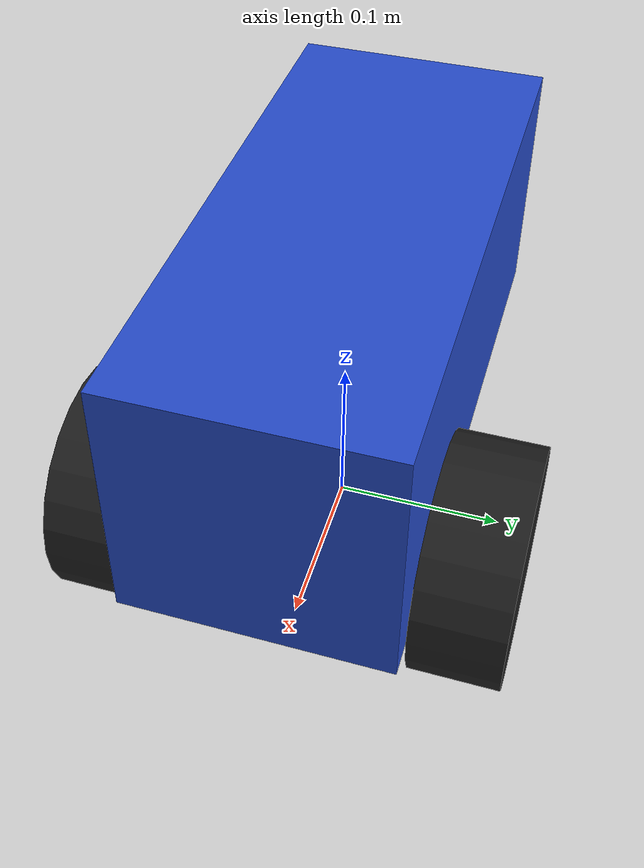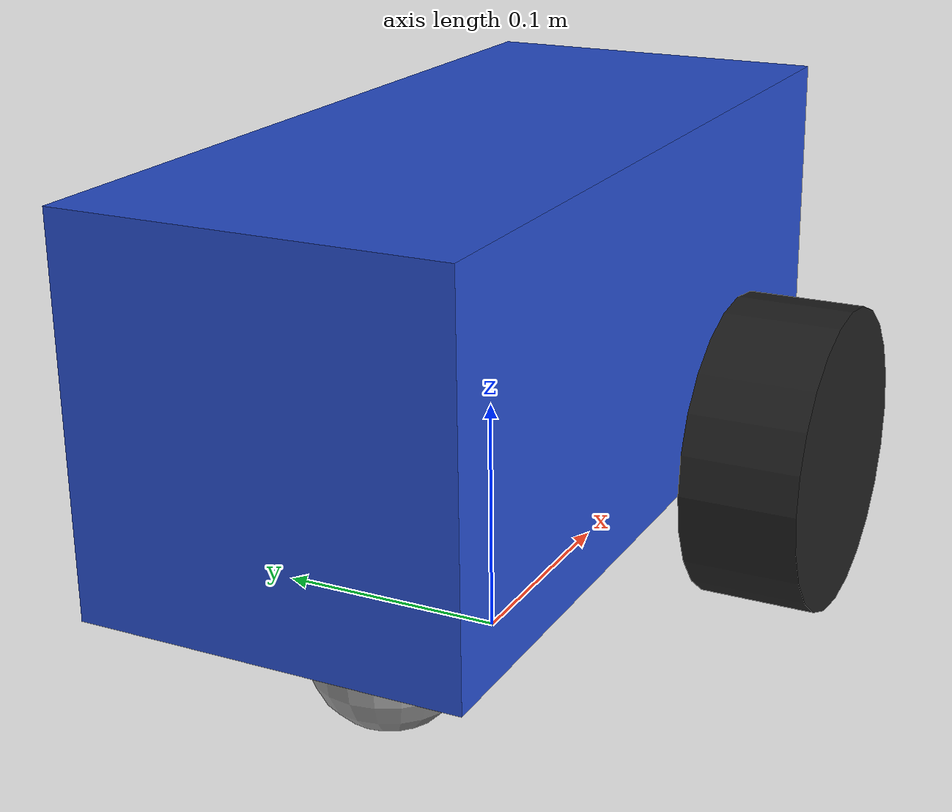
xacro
<?xml version="1.0"?>
<robot xmlns:xacro="http://www.ros.org/wiki/xacro">

    <xacro:property name="base_length" value="0.34" />
    <xacro:property name="base_width" value="0.15" />
    <xacro:property name="base_height" value="0.15" />
    <xacro:property name="wheel_radius" value="0.066" />
    <xacro:property name="wheel_length" value="0.05" />

    <link name="base_footprint" >
        <origin xyz= "0 0 0" rpy="0 0 0" />
    </link>

    <xacro:macro name="wheel_link" params="prefix">
        <link name="${prefix}_wheel_link">
            <visual>
                <geometry>
                    <cylinder radius="${wheel_radius}" length="${wheel_length}"/>
                </geometry>
                <origin xyz="0 0 0" rpy ="${pi / 2.0} 0 0" />
                <material name="black" />
            </visual>
            <collision>
                <geometry>
                    <sphere radius="${wheel_radius}" />
                </geometry>
                <origin xyz="0 0 0" rpy ="0 0 0" /> <!-- silindir gibi rotate etmedik çünkü sphere olduğu için bişi değiştirmicek-->
            </collision>
            <!-- inertia eklicez common properties'te tanıttığımız fonksiyonu kullanarak, m kilogram cinsinden-->
            <xacro:cylinder_inertia m="1.0" r="${wheel_radius}" h="${wheel_length}" o_xyz="0 0 0" o_rpy="${pi / 2.0} 0 0" />
        </link>
    </xacro:macro>

    <xacro:wheel_link prefix="right" />
    <xacro:wheel_link prefix="left" />

    <link name="base_link">
        <visual>
            <geometry>
                 <box size="${base_length} ${base_width} ${base_height}" /> <!-- length width height in meters -->
            </geometry>
            <origin xyz= "0 0 ${base_height / 2.0}" rpy="0 0 0" />
            <material name="blue" />
        </visual>
        <!-- collision ekliyoruz-->
        <collision>
            <!-- direkt visual'daki geometriyi ve origini koyduk, basit olması için -->
            <geometry>
                 <box size="${base_length} ${base_width} ${base_height}" />
            </geometry>
            <origin xyz= "0 0 ${base_height / 2.0}" rpy="0 0 0" />
        </collision>
        <!-- inertia eklicez common properties'te tanıttığımız fonksiyonu kullanarak-->
        <xacro:box_inertia m="1.8" x="${base_length}" y="${base_width}" z="${base_height}" o_xyz="0 0 ${base_height / 2.0}" o_rpy="0 0 0" />
    </link>

    <link name="caster_wheel_link">
        <visual>
            <geometry>
                <sphere radius="${wheel_radius / 2.0}"/>
            </geometry>
            <origin xyz="0 0 0" rpy ="0 0 0" />
            <material name="grey" />
        </visual>
        <!-- collisionu direkt yukardan kopyaladık-->
        <collision>
            <geometry>
                <sphere radius="${wheel_radius / 2.0}"/>
            </geometry>
            <origin xyz="0 0 0" rpy ="0 0 0" />
        </collision>
        <!-- inertia eklicez common properties'te tanıttığımız fonksiyonu kullanarak-->
        <xacro:sphere_inertia m="0.5" r="${wheel_radius / 2.0}" o_xyz="0 0 0" o_rpy="0 0 0" />
    </link>

    <joint name="base_caster_wheel_joint" type="fixed">
        <parent link="base_link" />
        <child link ="caster_wheel_link" />
        <origin xyz="${-base_length / 4.0} 0 ${-wheel_radius / 2.0}" rpy="0 0 0" />
    </joint>

    <joint name="base_right_wheel_joint" type="continuous">
        <parent link="base_link" />
        <child link="right_wheel_link" />
        <origin xyz="${base_length / 4.0} ${-(base_width + wheel_length) / 2.0} 0" rpy="0 0 0" />
        <axis xyz="0 1 0" />
    </joint>

    <joint name="base_left_wheel_joint" type="continuous">
        <parent link="base_link" />
        <child link="left_wheel_link" />
        <origin xyz="${base_length / 4.0} ${(base_width + wheel_length) / 2.0} 0" rpy="0 0 0" />
        <axis xyz="0 1 0" />
    </joint>

    <joint name="base_joint" type="fixed">
        <parent link="base_footprint" />
        <child link ="base_link" />
        <origin xyz="0 0 ${wheel_radius}" rpy="0 0 0" />
    </joint>
</robot>
